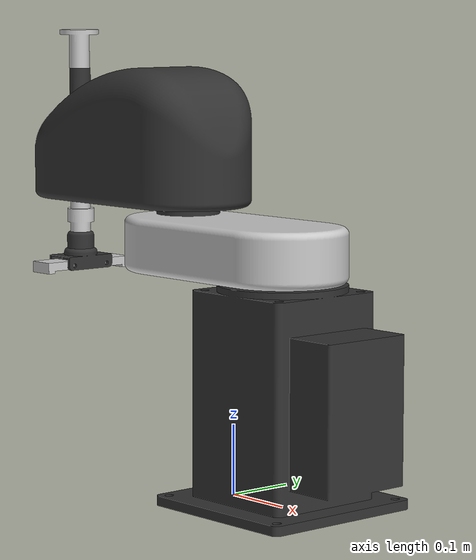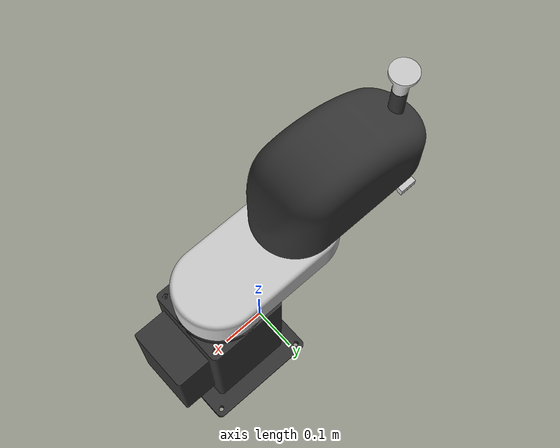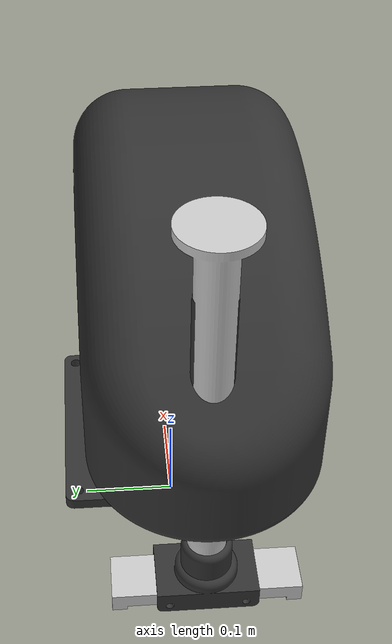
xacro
<?xml version="1.0"?>
<robot xmlns:xacro="http://www.ros.org/wiki/xacro" name="scara_manipulator">

  <xacro:arg name="is_sim" default="true"/>
  <xacro:include filename="$(find scara_description)/urdf/scara_gazebo.xacro" />
  <xacro:include filename="$(find scara_description)/urdf/scara_ros2_control.xacro" />

  <xacro:property name="PI" value="3.14159265359" />
  <xacro:property name="limit_effort" value="30.0" />
  <xacro:property name="limit_velocity" value="10.0" />

  <material name="robot_color_1"><color rgba="0.2 0.2 0.2 1"/></material>
  <material name="robot_color_2"><color rgba="0.8 0.8 0.8 1"/></material>

  <xacro:macro name="calc_inertia" params="m">
    <inertial>
      <origin xyz="0 0 0" rpy="0 0 0"/>
      <mass value="${m}" />
      <inertia ixx="${m * 0.01}" ixy="0.0" ixz="0.0" iyy="${m * 0.01}" iyz="0.0" izz="${m * 0.01}"/>
    </inertial>
  </xacro:macro>

  <link name="world"/>

  <joint name="world_fixed_joint" type="fixed">
    <parent link="world"/>
    <child link="base_link"/>
    <origin xyz="0.1 0 0.15" rpy="0 0 0"/>
  </joint>

  <link name="base_link">
    <xacro:calc_inertia m="2.1"/>
    <visual>
      <origin xyz="0.0 0.0 0.0" rpy="0 0 0"/>
      <geometry><mesh filename="package://scara_description/meshes/bs.stl" scale="0.001 0.001 0.001"/></geometry>
      <material name="robot_color_1"/>
    </visual>
    <collision>
      <origin xyz="0.0 0.0 0.0" rpy="0 0 0"/>
      <geometry><mesh filename="package://scara_description/meshes/bs.stl" scale="0.001 0.001 0.001"/></geometry>
    </collision>
  </link>

  <link name="es_link">
    <xacro:calc_inertia m="0.55"/>
    <visual>
      <origin xyz="-0.1 0.0 0.0" rpy="0 0 0"/>
      <geometry><mesh filename="package://scara_description/meshes/es.stl" scale="0.001 0.001 0.001"/></geometry>
      <material name="robot_color_2"/>
    </visual>
    <collision>
      <origin xyz="-0.1 0.0 0.0" rpy="0 0 0"/>
      <geometry><mesh filename="package://scara_description/meshes/es.stl" scale="0.001 0.001 0.001"/></geometry>
    </collision>
  </link>

  <joint name="joint_1" type="revolute">
    <parent link="base_link"/>
    <child link="es_link"/>
    <origin xyz="0.0 0 0.16" rpy="0 0 0"/>
    <axis xyz="0 0 1"/>
    <limit lower="-1.57" upper="1.57" effort="${limit_effort}" velocity="${limit_velocity}"/>
  </joint>

  <link name="as_link">
    <xacro:calc_inertia m="0.5"/>
    <visual>
      <origin xyz="-0.1 0.0 0.1" rpy="0 0 0"/>
      <geometry><mesh filename="package://scara_description/meshes/as.stl" scale="0.001 0.001 0.001"/></geometry>
      <material name="robot_color_1"/>
    </visual>
    <collision>
      <origin xyz="-0.1 0.0 0.1" rpy="0 0 0"/>
      <geometry><mesh filename="package://scara_description/meshes/as.stl" scale="0.001 0.001 0.001"/></geometry>
    </collision>
  </link>

  <joint name="joint_2" type="revolute">
    <parent link="es_link"/>
    <child link="as_link"/>
    <origin xyz="-0.205 0 0.03" rpy="0 0 0"/>
    <axis xyz="0 0 1"/>
    <limit lower="-1.57" upper="1.57" effort="${limit_effort}" velocity="${limit_velocity}"/>
  </joint>

  <link name="cs_link">
    <xacro:calc_inertia m="0.15"/>
    <visual>
      <origin xyz="0.0 0.0 0.0" rpy="0 0 0"/>
      <geometry><mesh filename="package://scara_description/meshes/cs.stl" scale="0.001 0.001 0.001"/></geometry>
      <material name="robot_color_2"/>
    </visual>
    <collision>
      <origin xyz="0.0 0.0 0.0" rpy="0 0 0"/>
      <geometry><mesh filename="package://scara_description/meshes/cs.stl" scale="0.001 0.001 0.001"/></geometry>
    </collision>
  </link>

  <joint name="joint_3" type="prismatic">
    <parent link="as_link"/>
    <child link="cs_link"/>
    <origin xyz="-0.245 0 0.15" rpy="0 0 0"/>
    <axis xyz="0 0 1"/>
    <limit lower="-0.05" upper="0" effort="${limit_effort}" velocity="${limit_velocity}"/>
  </joint>

  <link name="g1_gripper">
    <xacro:calc_inertia m="0.1"/>
    <visual>
      <origin xyz="0.0 0.0 0.0" rpy="0 0 0"/>
      <geometry><mesh filename="package://scara_description/meshes/g1.stl" scale="0.001 0.001 0.001"/></geometry>
      <material name="robot_color_1"/>
    </visual>
    <collision>
      <origin xyz="0.0 0.0 0.0" rpy="0 0 0"/>
      <geometry><mesh filename="package://scara_description/meshes/g1.stl" scale="0.001 0.001 0.001"/></geometry>
    </collision>
  </link>

  <joint name="wrist_joint" type="revolute">
    <parent link="cs_link"/>
    <child link="g1_gripper"/>
    <origin xyz="0 0 -0.17" rpy="0 0 0"/>
    <axis xyz="0 0 1"/>
    <limit lower="-1.57" upper="1.57" effort="${limit_effort}" velocity="${limit_velocity}"/>
  </joint>

  <link name="g2_gripper">
    <xacro:calc_inertia m="0.03"/>
    <visual>
      <origin xyz="-0.02 0.02 -0.03" rpy="0 ${PI / 2} -${PI / 2}"/>
      <geometry><mesh filename="package://scara_description/meshes/g2.stl" scale="0.001 0.001 0.001"/></geometry>
      <material name="robot_color_2"/>
    </visual>
    <collision>
      <origin xyz="-0.02 0.02 -0.03" rpy="0 ${PI / 2} -${PI / 2}"/>
      <geometry><mesh filename="package://scara_description/meshes/g2.stl" scale="0.001 0.001 0.001"/></geometry>
    </collision>
  </link>

  <joint name="gripper_joint1" type="revolute">
    <parent link="g1_gripper"/>
    <child link="g2_gripper"/>
    <origin xyz="-0.01 0.030 -0.0225" rpy="0 -${PI / 2} 0"/>
    <axis xyz="0 0 1"/>
    <limit lower="0" upper="2.0" effort="${limit_effort}" velocity="${limit_velocity}"/>
  </joint>

  <link name="g3_gripper">
    <xacro:calc_inertia m="0.03"/>
    <visual>
      <origin xyz="-0.0 -0.02 -0.03" rpy="${PI / 2 } 0 ${PI}"/>
      <geometry><mesh filename="package://scara_description/meshes/g3.stl" scale="0.001 0.001 0.001"/></geometry>
      <material name="robot_color_2"/>
    </visual>
    <collision>
      <origin xyz="-0.02 -0.02 -0.03" rpy="${PI / 2} 0 ${PI}"/>
      <geometry><mesh filename="package://scara_description/meshes/g3.stl" scale="0.001 0.001 0.001"/></geometry>
    </collision>
  </link>

  <joint name="gripper_joint2" type="revolute">
    <parent link="g1_gripper"/>
    <child link="g3_gripper"/>
    <origin xyz="-0.01 -0.030 -0.0225" rpy="0 -${PI / 2} 0"/>
    <axis xyz="0 0 1"/>
    <limit lower="-2.0" upper="0" effort="${limit_effort}" velocity="${limit_velocity}"/>
    <mimic joint="gripper_joint1" multiplier="-1.0" offset="0"/>
  </joint>

  <gazebo reference="base_link">
    <material>Gazebo/DarkGrey</material>
  </gazebo>

  <gazebo reference="es_link">
    <material>Gazebo/Orange</material>
  </gazebo>

  <gazebo reference="as_link">
    <material>Gazebo/Orange</material>
  </gazebo>

  <gazebo reference="cs_link">
    <material>Gazebo/Grey</material>
  </gazebo>

  <gazebo reference="g1_gripper">
    <material>Gazebo/DarkGrey</material>
  </gazebo>

  <gazebo reference="g2_gripper">
    <material>Gazebo/White</material>
  </gazebo>

  <gazebo reference="g3_gripper">
    <material>Gazebo/White</material>
  </gazebo>

</robot>
